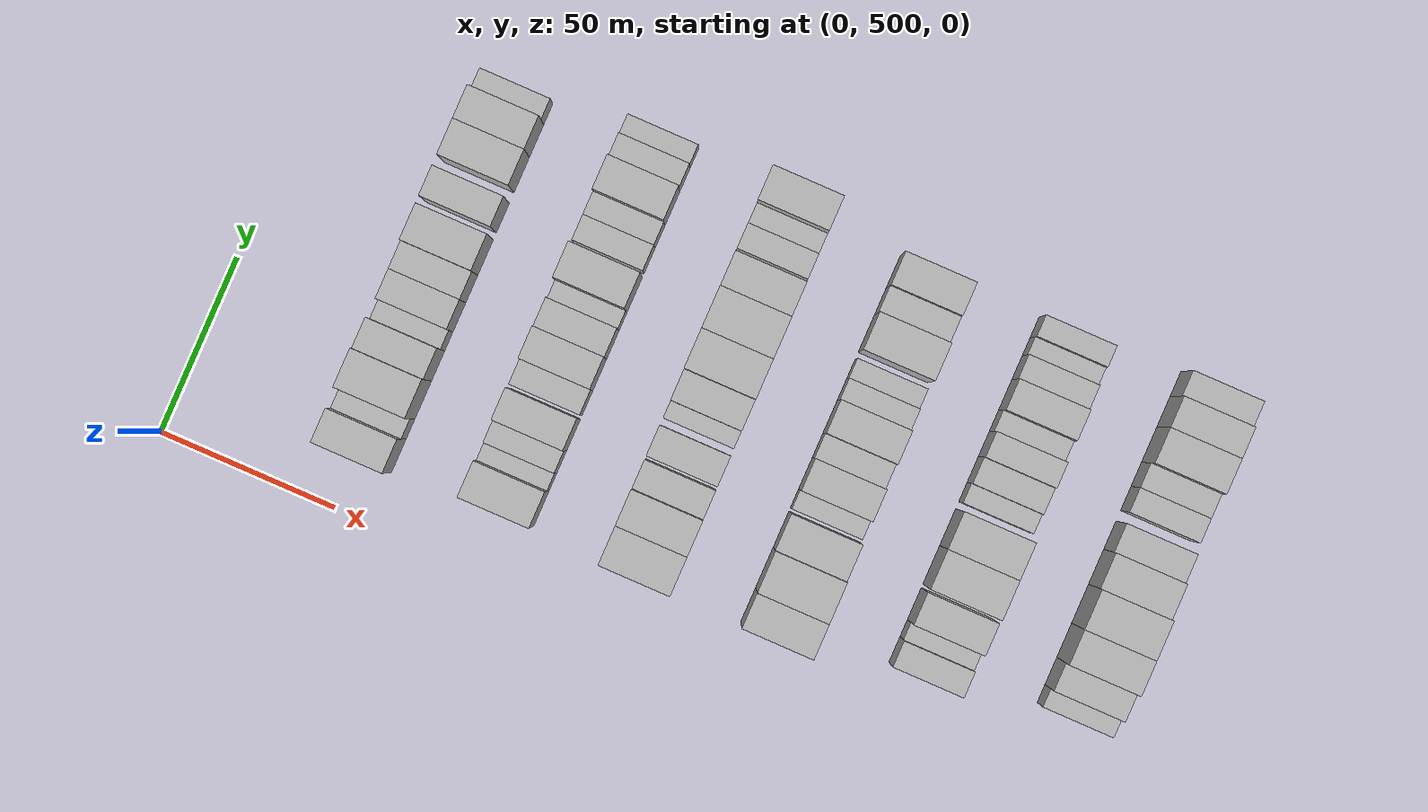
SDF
<sdf version="1.6">
 <world name="default">
  <model name="building_115">
   <static>1</static>
   <pose>50.0000 519.3262 0 0.000000 0.000000 0.000000</pose>
   <link name="link">
    <pose>0 0 10.50 0 0 0</pose>
    <collision name="collision"><geometry><box><size>20.0000 9.5626 21.0000</size></box></geometry></collision>
    <visual name="visual">
     <cast_shadows>0</cast_shadows>
     <geometry><box><size>20.0000 9.5626 21.0000</size></box></geometry>
     <material>
      <script>
       <uri>model://HANNAS_wall/materials/scripts</uri>
       <uri>model://HANNAS_wall/materials/textures</uri>
       <name>vrc/HANNAS_wall</name>
      </script>
     </material>
    </visual>
   </link>
  </model>
  <model name="building_116">
   <static>1</static>
   <pose>50.0000 526.9733 0 0.000000 0.000000 0.000000</pose>
   <link name="link">
    <pose>0 0 6.00 0 0 0</pose>
    <collision name="collision"><geometry><box><size>20.0000 5.7315 12.0000</size></box></geometry></collision>
    <visual name="visual">
     <cast_shadows>0</cast_shadows>
     <geometry><box><size>20.0000 5.7315 12.0000</size></box></geometry>
     <material>
      <script>
       <uri>model://HANNAS_wall/materials/scripts</uri>
       <uri>model://HANNAS_wall/materials/textures</uri>
       <name>vrc/HANNAS_wall</name>
      </script>
     </material>
    </visual>
   </link>
  </model>
  <model name="building_117">
   <static>1</static>
   <pose>50.0000 535.3043 0 0.000000 0.000000 0.000000</pose>
   <link name="link">
    <pose>0 0 12.00 0 0 0</pose>
    <collision name="collision"><geometry><box><size>20.0000 10.9306 24.0000</size></box></geometry></collision>
    <visual name="visual">
     <cast_shadows>0</cast_shadows>
     <geometry><box><size>20.0000 10.9306 24.0000</size></box></geometry>
     <material>
      <script>
       <uri>model://HANNAS_wall/materials/scripts</uri>
       <uri>model://HANNAS_wall/materials/textures</uri>
       <name>vrc/HANNAS_wall</name>
      </script>
     </material>
    </visual>
   </link>
  </model>
  <model name="building_118">
   <static>1</static>
   <pose>50.0000 545.1106 0 0.000000 0.000000 0.000000</pose>
   <link name="link">
    <pose>0 0 10.50 0 0 0</pose>
    <collision name="collision"><geometry><box><size>20.0000 8.6820 21.0000</size></box></geometry></collision>
    <visual name="visual">
     <cast_shadows>0</cast_shadows>
     <geometry><box><size>20.0000 8.6820 21.0000</size></box></geometry>
     <material>
      <script>
       <uri>model://HANNAS_wall/materials/scripts</uri>
       <uri>model://HANNAS_wall/materials/textures</uri>
       <name>vrc/HANNAS_wall</name>
      </script>
     </material>
    </visual>
   </link>
  </model>
  <model name="building_119">
   <static>1</static>
   <pose>50.0000 552.1535 0 0.000000 0.000000 0.000000</pose>
   <link name="link">
    <pose>0 0 6.00 0 0 0</pose>
    <collision name="collision"><geometry><box><size>20.0000 5.4037 12.0000</size></box></geometry></collision>
    <visual name="visual">
     <cast_shadows>0</cast_shadows>
     <geometry><box><size>20.0000 5.4037 12.0000</size></box></geometry>
     <material>
      <script>
       <uri>model://HANNAS_wall/materials/scripts</uri>
       <uri>model://HANNAS_wall/materials/textures</uri>
       <name>vrc/HANNAS_wall</name>
      </script>
     </material>
    </visual>
   </link>
  </model>
  <model name="building_120">
   <static>1</static>
   <pose>50.0000 559.0353 0 0.000000 0.000000 0.000000</pose>
   <link name="link">
    <pose>0 0 9.00 0 0 0</pose>
    <collision name="collision"><geometry><box><size>20.0000 8.3599 18.0000</size></box></geometry></collision>
    <visual name="visual">
     <cast_shadows>0</cast_shadows>
     <geometry><box><size>20.0000 8.3599 18.0000</size></box></geometry>
     <material>
      <script>
       <uri>model://HANNAS_wall/materials/scripts</uri>
       <uri>model://HANNAS_wall/materials/textures</uri>
       <name>vrc/HANNAS_wall</name>
      </script>
     </material>
    </visual>
   </link>
  </model>
  <model name="building_121">
   <static>1</static>
   <pose>50.0000 567.1533 0 0.000000 0.000000 0.000000</pose>
   <link name="link">
    <pose>0 0 9.00 0 0 0</pose>
    <collision name="collision"><geometry><box><size>20.0000 7.8762 18.0000</size></box></geometry></collision>
    <visual name="visual">
     <cast_shadows>0</cast_shadows>
     <geometry><box><size>20.0000 7.8762 18.0000</size></box></geometry>
     <material>
      <script>
       <uri>model://HANNAS_wall/materials/scripts</uri>
       <uri>model://HANNAS_wall/materials/textures</uri>
       <name>vrc/HANNAS_wall</name>
      </script>
     </material>
    </visual>
   </link>
  </model>
  <model name="building_122">
   <static>1</static>
   <pose>50.0000 576.2360 0 0.000000 0.000000 0.000000</pose>
   <link name="link">
    <pose>0 0 10.50 0 0 0</pose>
    <collision name="collision"><geometry><box><size>20.0000 10.2893 21.0000</size></box></geometry></collision>
    <visual name="visual">
     <cast_shadows>0</cast_shadows>
     <geometry><box><size>20.0000 10.2893 21.0000</size></box></geometry>
     <material>
      <script>
       <uri>model://HANNAS_wall/materials/scripts</uri>
       <uri>model://HANNAS_wall/materials/textures</uri>
       <name>vrc/HANNAS_wall</name>
      </script>
     </material>
    </visual>
   </link>
  </model>
  <model name="building_123">
   <static>1</static>
   <pose>50.0000 587.6496 0 0.000000 0.000000 0.000000</pose>
   <link name="link">
    <pose>0 0 10.50 0 0 0</pose>
    <collision name="collision"><geometry><box><size>20.0000 8.5380 21.0000</size></box></geometry></collision>
    <visual name="visual">
     <cast_shadows>0</cast_shadows>
     <geometry><box><size>20.0000 8.5380 21.0000</size></box></geometry>
     <material>
      <script>
       <uri>model://HANNAS_wall/materials/scripts</uri>
       <uri>model://HANNAS_wall/materials/textures</uri>
       <name>vrc/HANNAS_wall</name>
      </script>
     </material>
    </visual>
   </link>
  </model>
  <model name="building_124">
   <static>1</static>
   <pose>50.0000 599.9868 0 0.000000 0.000000 0.000000</pose>
   <link name="link">
    <pose>0 0 10.50 0 0 0</pose>
    <collision name="collision"><geometry><box><size>20.0000 10.1363 21.0000</size></box></geometry></collision>
    <visual name="visual">
     <cast_shadows>0</cast_shadows>
     <geometry><box><size>20.0000 10.1363 21.0000</size></box></geometry>
     <material>
      <script>
       <uri>model://HANNAS_wall/materials/scripts</uri>
       <uri>model://HANNAS_wall/materials/textures</uri>
       <name>vrc/HANNAS_wall</name>
      </script>
     </material>
    </visual>
   </link>
  </model>
  <model name="building_125">
   <static>1</static>
   <pose>50.0000 609.7550 0 0.000000 0.000000 0.000000</pose>
   <link name="link">
    <pose>0 0 10.50 0 0 0</pose>
    <collision name="collision"><geometry><box><size>20.0000 9.4000 21.0000</size></box></geometry></collision>
    <visual name="visual">
     <cast_shadows>0</cast_shadows>
     <geometry><box><size>20.0000 9.4000 21.0000</size></box></geometry>
     <material>
      <script>
       <uri>model://HANNAS_wall/materials/scripts</uri>
       <uri>model://HANNAS_wall/materials/textures</uri>
       <name>vrc/HANNAS_wall</name>
      </script>
     </material>
    </visual>
   </link>
  </model>
  <model name="building_126">
   <static>1</static>
   <pose>50.0000 617.4449 0 0.000000 0.000000 0.000000</pose>
   <link name="link">
    <pose>0 0 6.00 0 0 0</pose>
    <collision name="collision"><geometry><box><size>20.0000 5.9799 12.0000</size></box></geometry></collision>
    <visual name="visual">
     <cast_shadows>0</cast_shadows>
     <geometry><box><size>20.0000 5.9799 12.0000</size></box></geometry>
     <material>
      <script>
       <uri>model://HANNAS_wall/materials/scripts</uri>
       <uri>model://HANNAS_wall/materials/textures</uri>
       <name>vrc/HANNAS_wall</name>
      </script>
     </material>
    </visual>
   </link>
  </model>
  <model name="building_254">
   <static>1</static>
   <pose>90.0000 521.7883 0 0.000000 0.000000 0.000000</pose>
   <link name="link">
    <pose>0 0 10.50 0 0 0</pose>
    <collision name="collision"><geometry><box><size>20.0000 10.2414 21.0000</size></box></geometry></collision>
    <visual name="visual">
     <cast_shadows>0</cast_shadows>
     <geometry><box><size>20.0000 10.2414 21.0000</size></box></geometry>
     <material>
      <script>
       <uri>model://HANNAS_wall/materials/scripts</uri>
       <uri>model://HANNAS_wall/materials/textures</uri>
       <name>vrc/HANNAS_wall</name>
      </script>
     </material>
    </visual>
   </link>
  </model>
  <model name="building_255">
   <static>1</static>
   <pose>90.0000 529.4108 0 0.000000 0.000000 0.000000</pose>
   <link name="link">
    <pose>0 0 6.00 0 0 0</pose>
    <collision name="collision"><geometry><box><size>20.0000 5.0036 12.0000</size></box></geometry></collision>
    <visual name="visual">
     <cast_shadows>0</cast_shadows>
     <geometry><box><size>20.0000 5.0036 12.0000</size></box></geometry>
     <material>
      <script>
       <uri>model://HANNAS_wall/materials/scripts</uri>
       <uri>model://HANNAS_wall/materials/textures</uri>
       <name>vrc/HANNAS_wall</name>
      </script>
     </material>
    </visual>
   </link>
  </model>
  <model name="building_256">
   <static>1</static>
   <pose>90.0000 535.0986 0 0.000000 0.000000 0.000000</pose>
   <link name="link">
    <pose>0 0 7.50 0 0 0</pose>
    <collision name="collision"><geometry><box><size>20.0000 6.3720 15.0000</size></box></geometry></collision>
    <visual name="visual">
     <cast_shadows>0</cast_shadows>
     <geometry><box><size>20.0000 6.3720 15.0000</size></box></geometry>
     <material>
      <script>
       <uri>model://HANNAS_wall/materials/scripts</uri>
       <uri>model://HANNAS_wall/materials/textures</uri>
       <name>vrc/HANNAS_wall</name>
      </script>
     </material>
    </visual>
   </link>
  </model>
  <model name="building_257">
   <static>1</static>
   <pose>90.0000 542.8212 0 0.000000 0.000000 0.000000</pose>
   <link name="link">
    <pose>0 0 10.50 0 0 0</pose>
    <collision name="collision"><geometry><box><size>20.0000 9.0731 21.0000</size></box></geometry></collision>
    <visual name="visual">
     <cast_shadows>0</cast_shadows>
     <geometry><box><size>20.0000 9.0731 21.0000</size></box></geometry>
     <material>
      <script>
       <uri>model://HANNAS_wall/materials/scripts</uri>
       <uri>model://HANNAS_wall/materials/textures</uri>
       <name>vrc/HANNAS_wall</name>
      </script>
     </material>
    </visual>
   </link>
  </model>
  <model name="building_258">
   <static>1</static>
   <pose>90.0000 551.9077 0 0.000000 0.000000 0.000000</pose>
   <link name="link">
    <pose>0 0 7.50 0 0 0</pose>
    <collision name="collision"><geometry><box><size>20.0000 7.1000 15.0000</size></box></geometry></collision>
    <visual name="visual">
     <cast_shadows>0</cast_shadows>
     <geometry><box><size>20.0000 7.1000 15.0000</size></box></geometry>
     <material>
      <script>
       <uri>model://HANNAS_wall/materials/scripts</uri>
       <uri>model://HANNAS_wall/materials/textures</uri>
       <name>vrc/HANNAS_wall</name>
      </script>
     </material>
    </visual>
   </link>
  </model>
  <model name="building_259">
   <static>1</static>
   <pose>90.0000 559.9899 0 0.000000 0.000000 0.000000</pose>
   <link name="link">
    <pose>0 0 10.50 0 0 0</pose>
    <collision name="collision"><geometry><box><size>20.0000 9.0643 21.0000</size></box></geometry></collision>
    <visual name="visual">
     <cast_shadows>0</cast_shadows>
     <geometry><box><size>20.0000 9.0643 21.0000</size></box></geometry>
     <material>
      <script>
       <uri>model://HANNAS_wall/materials/scripts</uri>
       <uri>model://HANNAS_wall/materials/textures</uri>
       <name>vrc/HANNAS_wall</name>
      </script>
     </material>
    </visual>
   </link>
  </model>
  <model name="building_260">
   <static>1</static>
   <pose>90.0000 568.5949 0 0.000000 0.000000 0.000000</pose>
   <link name="link">
    <pose>0 0 9.00 0 0 0</pose>
    <collision name="collision"><geometry><box><size>20.0000 8.1458 18.0000</size></box></geometry></collision>
    <visual name="visual">
     <cast_shadows>0</cast_shadows>
     <geometry><box><size>20.0000 8.1458 18.0000</size></box></geometry>
     <material>
      <script>
       <uri>model://HANNAS_wall/materials/scripts</uri>
       <uri>model://HANNAS_wall/materials/textures</uri>
       <name>vrc/HANNAS_wall</name>
      </script>
     </material>
    </visual>
   </link>
  </model>
  <model name="building_261">
   <static>1</static>
   <pose>90.0000 575.2746 0 0.000000 0.000000 0.000000</pose>
   <link name="link">
    <pose>0 0 6.00 0 0 0</pose>
    <collision name="collision"><geometry><box><size>20.0000 5.2136 12.0000</size></box></geometry></collision>
    <visual name="visual">
     <cast_shadows>0</cast_shadows>
     <geometry><box><size>20.0000 5.2136 12.0000</size></box></geometry>
     <material>
      <script>
       <uri>model://HANNAS_wall/materials/scripts</uri>
       <uri>model://HANNAS_wall/materials/textures</uri>
       <name>vrc/HANNAS_wall</name>
      </script>
     </material>
    </visual>
   </link>
  </model>
  <model name="building_262">
   <static>1</static>
   <pose>90.0000 582.9206 0 0.000000 0.000000 0.000000</pose>
   <link name="link">
    <pose>0 0 12.00 0 0 0</pose>
    <collision name="collision"><geometry><box><size>20.0000 10.0784 24.0000</size></box></geometry></collision>
    <visual name="visual">
     <cast_shadows>0</cast_shadows>
     <geometry><box><size>20.0000 10.0784 24.0000</size></box></geometry>
     <material>
      <script>
       <uri>model://HANNAS_wall/materials/scripts</uri>
       <uri>model://HANNAS_wall/materials/textures</uri>
       <name>vrc/HANNAS_wall</name>
      </script>
     </material>
    </visual>
   </link>
  </model>
  <model name="building_263">
   <static>1</static>
   <pose>90.0000 592.5752 0 0.000000 0.000000 0.000000</pose>
   <link name="link">
    <pose>0 0 7.50 0 0 0</pose>
    <collision name="collision"><geometry><box><size>20.0000 7.2308 15.0000</size></box></geometry></collision>
    <visual name="visual">
     <cast_shadows>0</cast_shadows>
     <geometry><box><size>20.0000 7.2308 15.0000</size></box></geometry>
     <material>
      <script>
       <uri>model://HANNAS_wall/materials/scripts</uri>
       <uri>model://HANNAS_wall/materials/textures</uri>
       <name>vrc/HANNAS_wall</name>
      </script>
     </material>
    </visual>
   </link>
  </model>
  <model name="building_264">
   <static>1</static>
   <pose>90.0000 599.4547 0 0.000000 0.000000 0.000000</pose>
   <link name="link">
    <pose>0 0 7.50 0 0 0</pose>
    <collision name="collision"><geometry><box><size>20.0000 6.5281 15.0000</size></box></geometry></collision>
    <visual name="visual">
     <cast_shadows>0</cast_shadows>
     <geometry><box><size>20.0000 6.5281 15.0000</size></box></geometry>
     <material>
      <script>
       <uri>model://HANNAS_wall/materials/scripts</uri>
       <uri>model://HANNAS_wall/materials/textures</uri>
       <name>vrc/HANNAS_wall</name>
      </script>
     </material>
    </visual>
   </link>
  </model>
  <model name="building_265">
   <static>1</static>
   <pose>90.0000 607.5825 0 0.000000 0.000000 0.000000</pose>
   <link name="link">
    <pose>0 0 10.50 0 0 0</pose>
    <collision name="collision"><geometry><box><size>20.0000 9.7274 21.0000</size></box></geometry></collision>
    <visual name="visual">
     <cast_shadows>0</cast_shadows>
     <geometry><box><size>20.0000 9.7274 21.0000</size></box></geometry>
     <material>
      <script>
       <uri>model://HANNAS_wall/materials/scripts</uri>
       <uri>model://HANNAS_wall/materials/textures</uri>
       <name>vrc/HANNAS_wall</name>
      </script>
     </material>
    </visual>
   </link>
  </model>
  <model name="building_266">
   <static>1</static>
   <pose>90.0000 615.8366 0 0.000000 0.000000 0.000000</pose>
   <link name="link">
    <pose>0 0 7.50 0 0 0</pose>
    <collision name="collision"><geometry><box><size>20.0000 6.7807 15.0000</size></box></geometry></collision>
    <visual name="visual">
     <cast_shadows>0</cast_shadows>
     <geometry><box><size>20.0000 6.7807 15.0000</size></box></geometry>
     <material>
      <script>
       <uri>model://HANNAS_wall/materials/scripts</uri>
       <uri>model://HANNAS_wall/materials/textures</uri>
       <name>vrc/HANNAS_wall</name>
      </script>
     </material>
    </visual>
   </link>
  </model>
  <model name="building_267">
   <static>1</static>
   <pose>90.0000 622.0566 0 0.000000 0.000000 0.000000</pose>
   <link name="link">
    <pose>0 0 6.00 0 0 0</pose>
    <collision name="collision"><geometry><box><size>20.0000 5.6593 12.0000</size></box></geometry></collision>
    <visual name="visual">
     <cast_shadows>0</cast_shadows>
     <geometry><box><size>20.0000 5.6593 12.0000</size></box></geometry>
     <material>
      <script>
       <uri>model://HANNAS_wall/materials/scripts</uri>
       <uri>model://HANNAS_wall/materials/textures</uri>
       <name>vrc/HANNAS_wall</name>
      </script>
     </material>
    </visual>
   </link>
  </model>
  <model name="building_385">
   <static>1</static>
   <pose>130.0000 520.8320 0 0.000000 0.000000 0.000000</pose>
   <link name="link">
    <pose>0 0 12.00 0 0 0</pose>
    <collision name="collision"><geometry><box><size>20.0000 10.9348 24.0000</size></box></geometry></collision>
    <visual name="visual">
     <cast_shadows>0</cast_shadows>
     <geometry><box><size>20.0000 10.9348 24.0000</size></box></geometry>
     <material>
      <script>
       <uri>model://HANNAS_wall/materials/scripts</uri>
       <uri>model://HANNAS_wall/materials/textures</uri>
       <name>vrc/HANNAS_wall</name>
      </script>
     </material>
    </visual>
   </link>
  </model>
  <model name="building_386">
   <static>1</static>
   <pose>130.0000 531.3934 0 0.000000 0.000000 0.000000</pose>
   <link name="link">
    <pose>0 0 12.00 0 0 0</pose>
    <collision name="collision"><geometry><box><size>20.0000 10.1879 24.0000</size></box></geometry></collision>
    <visual name="visual">
     <cast_shadows>0</cast_shadows>
     <geometry><box><size>20.0000 10.1879 24.0000</size></box></geometry>
     <material>
      <script>
       <uri>model://HANNAS_wall/materials/scripts</uri>
       <uri>model://HANNAS_wall/materials/textures</uri>
       <name>vrc/HANNAS_wall</name>
      </script>
     </material>
    </visual>
   </link>
  </model>
  <model name="building_387">
   <static>1</static>
   <pose>130.0000 540.5738 0 0.000000 0.000000 0.000000</pose>
   <link name="link">
    <pose>0 0 9.00 0 0 0</pose>
    <collision name="collision"><geometry><box><size>20.0000 8.1730 18.0000</size></box></geometry></collision>
    <visual name="visual">
     <cast_shadows>0</cast_shadows>
     <geometry><box><size>20.0000 8.1730 18.0000</size></box></geometry>
     <material>
      <script>
       <uri>model://HANNAS_wall/materials/scripts</uri>
       <uri>model://HANNAS_wall/materials/textures</uri>
       <name>vrc/HANNAS_wall</name>
      </script>
     </material>
    </visual>
   </link>
  </model>
  <model name="building_388">
   <static>1</static>
   <pose>130.0000 549.9892 0 0.000000 0.000000 0.000000</pose>
   <link name="link">
    <pose>0 0 9.00 0 0 0</pose>
    <collision name="collision"><geometry><box><size>20.0000 8.6577 18.0000</size></box></geometry></collision>
    <visual name="visual">
     <cast_shadows>0</cast_shadows>
     <geometry><box><size>20.0000 8.6577 18.0000</size></box></geometry>
     <material>
      <script>
       <uri>model://HANNAS_wall/materials/scripts</uri>
       <uri>model://HANNAS_wall/materials/textures</uri>
       <name>vrc/HANNAS_wall</name>
      </script>
     </material>
    </visual>
   </link>
  </model>
  <model name="building_389">
   <static>1</static>
   <pose>130.0000 558.7937 0 0.000000 0.000000 0.000000</pose>
   <link name="link">
    <pose>0 0 6.00 0 0 0</pose>
    <collision name="collision"><geometry><box><size>20.0000 4.9512 12.0000</size></box></geometry></collision>
    <visual name="visual">
     <cast_shadows>0</cast_shadows>
     <geometry><box><size>20.0000 4.9512 12.0000</size></box></geometry>
     <material>
      <script>
       <uri>model://HANNAS_wall/materials/scripts</uri>
       <uri>model://HANNAS_wall/materials/textures</uri>
       <name>vrc/HANNAS_wall</name>
      </script>
     </material>
    </visual>
   </link>
  </model>
  <model name="building_390">
   <static>1</static>
   <pose>130.0000 565.6723 0 0.000000 0.000000 0.000000</pose>
   <link name="link">
    <pose>0 0 9.00 0 0 0</pose>
    <collision name="collision"><geometry><box><size>20.0000 8.8061 18.0000</size></box></geometry></collision>
    <visual name="visual">
     <cast_shadows>0</cast_shadows>
     <geometry><box><size>20.0000 8.8061 18.0000</size></box></geometry>
     <material>
      <script>
       <uri>model://HANNAS_wall/materials/scripts</uri>
       <uri>model://HANNAS_wall/materials/textures</uri>
       <name>vrc/HANNAS_wall</name>
      </script>
     </material>
    </visual>
   </link>
  </model>
  <model name="building_391">
   <static>1</static>
   <pose>130.0000 575.7002 0 0.000000 0.000000 0.000000</pose>
   <link name="link">
    <pose>0 0 12.00 0 0 0</pose>
    <collision name="collision"><geometry><box><size>20.0000 11.2496 24.0000</size></box></geometry></collision>
    <visual name="visual">
     <cast_shadows>0</cast_shadows>
     <geometry><box><size>20.0000 11.2496 24.0000</size></box></geometry>
     <material>
      <script>
       <uri>model://HANNAS_wall/materials/scripts</uri>
       <uri>model://HANNAS_wall/materials/textures</uri>
       <name>vrc/HANNAS_wall</name>
      </script>
     </material>
    </visual>
   </link>
  </model>
  <model name="building_392">
   <static>1</static>
   <pose>130.0000 587.2258 0 0.000000 0.000000 0.000000</pose>
   <link name="link">
    <pose>0 0 12.00 0 0 0</pose>
    <collision name="collision"><geometry><box><size>20.0000 11.8016 24.0000</size></box></geometry></collision>
    <visual name="visual">
     <cast_shadows>0</cast_shadows>
     <geometry><box><size>20.0000 11.8016 24.0000</size></box></geometry>
     <material>
      <script>
       <uri>model://HANNAS_wall/materials/scripts</uri>
       <uri>model://HANNAS_wall/materials/textures</uri>
       <name>vrc/HANNAS_wall</name>
      </script>
     </material>
    </visual>
   </link>
  </model>
  <model name="building_393">
   <static>1</static>
   <pose>130.0000 598.0948 0 0.000000 0.000000 0.000000</pose>
   <link name="link">
    <pose>0 0 10.50 0 0 0</pose>
    <collision name="collision"><geometry><box><size>20.0000 9.9365 21.0000</size></box></geometry></collision>
    <visual name="visual">
     <cast_shadows>0</cast_shadows>
     <geometry><box><size>20.0000 9.9365 21.0000</size></box></geometry>
     <material>
      <script>
       <uri>model://HANNAS_wall/materials/scripts</uri>
       <uri>model://HANNAS_wall/materials/textures</uri>
       <name>vrc/HANNAS_wall</name>
      </script>
     </material>
    </visual>
   </link>
  </model>
  <model name="building_394">
   <static>1</static>
   <pose>130.0000 607.6661 0 0.000000 0.000000 0.000000</pose>
   <link name="link">
    <pose>0 0 7.50 0 0 0</pose>
    <collision name="collision"><geometry><box><size>20.0000 7.2060 15.0000</size></box></geometry></collision>
    <visual name="visual">
     <cast_shadows>0</cast_shadows>
     <geometry><box><size>20.0000 7.2060 15.0000</size></box></geometry>
     <material>
      <script>
       <uri>model://HANNAS_wall/materials/scripts</uri>
       <uri>model://HANNAS_wall/materials/textures</uri>
       <name>vrc/HANNAS_wall</name>
      </script>
     </material>
    </visual>
   </link>
  </model>
  <model name="building_395">
   <static>1</static>
   <pose>130.0000 614.2426 0 0.000000 0.000000 0.000000</pose>
   <link name="link">
    <pose>0 0 6.00 0 0 0</pose>
    <collision name="collision"><geometry><box><size>20.0000 5.9469 12.0000</size></box></geometry></collision>
    <visual name="visual">
     <cast_shadows>0</cast_shadows>
     <geometry><box><size>20.0000 5.9469 12.0000</size></box></geometry>
     <material>
      <script>
       <uri>model://HANNAS_wall/materials/scripts</uri>
       <uri>model://HANNAS_wall/materials/textures</uri>
       <name>vrc/HANNAS_wall</name>
      </script>
     </material>
    </visual>
   </link>
  </model>
  <model name="building_396">
   <static>1</static>
   <pose>130.0000 622.1061 0 0.000000 0.000000 0.000000</pose>
   <link name="link">
    <pose>0 0 10.50 0 0 0</pose>
    <collision name="collision"><geometry><box><size>20.0000 9.7802 21.0000</size></box></geometry></collision>
    <visual name="visual">
     <cast_shadows>0</cast_shadows>
     <geometry><box><size>20.0000 9.7802 21.0000</size></box></geometry>
     <material>
      <script>
       <uri>model://HANNAS_wall/materials/scripts</uri>
       <uri>model://HANNAS_wall/materials/textures</uri>
       <name>vrc/HANNAS_wall</name>
      </script>
     </material>
    </visual>
   </link>
  </model>
  <model name="building_525">
   <static>1</static>
   <pose>170.0000 520.2026 0 0.000000 0.000000 0.000000</pose>
   <link name="link">
    <pose>0 0 12.00 0 0 0</pose>
    <collision name="collision"><geometry><box><size>20.0000 9.8419 24.0000</size></box></geometry></collision>
    <visual name="visual">
     <cast_shadows>0</cast_shadows>
     <geometry><box><size>20.0000 9.8419 24.0000</size></box></geometry>
     <material>
      <script>
       <uri>model://HANNAS_wall/materials/scripts</uri>
       <uri>model://HANNAS_wall/materials/textures</uri>
       <name>vrc/HANNAS_wall</name>
      </script>
     </material>
    </visual>
   </link>
  </model>
  <model name="building_526">
   <static>1</static>
   <pose>170.0000 530.9499 0 0.000000 0.000000 0.000000</pose>
   <link name="link">
    <pose>0 0 12.00 0 0 0</pose>
    <collision name="collision"><geometry><box><size>20.0000 11.6525 24.0000</size></box></geometry></collision>
    <visual name="visual">
     <cast_shadows>0</cast_shadows>
     <geometry><box><size>20.0000 11.6525 24.0000</size></box></geometry>
     <material>
      <script>
       <uri>model://HANNAS_wall/materials/scripts</uri>
       <uri>model://HANNAS_wall/materials/textures</uri>
       <name>vrc/HANNAS_wall</name>
      </script>
     </material>
    </visual>
   </link>
  </model>
  <model name="building_527">
   <static>1</static>
   <pose>170.0000 541.9347 0 0.000000 0.000000 0.000000</pose>
   <link name="link">
    <pose>0 0 10.50 0 0 0</pose>
    <collision name="collision"><geometry><box><size>20.0000 10.3172 21.0000</size></box></geometry></collision>
    <visual name="visual">
     <cast_shadows>0</cast_shadows>
     <geometry><box><size>20.0000 10.3172 21.0000</size></box></geometry>
     <material>
      <script>
       <uri>model://HANNAS_wall/materials/scripts</uri>
       <uri>model://HANNAS_wall/materials/textures</uri>
       <name>vrc/HANNAS_wall</name>
      </script>
     </material>
    </visual>
   </link>
  </model>
  <model name="building_528">
   <static>1</static>
   <pose>170.0000 550.7646 0 0.000000 0.000000 0.000000</pose>
   <link name="link">
    <pose>0 0 6.00 0 0 0</pose>
    <collision name="collision"><geometry><box><size>20.0000 5.3425 12.0000</size></box></geometry></collision>
    <visual name="visual">
     <cast_shadows>0</cast_shadows>
     <geometry><box><size>20.0000 5.3425 12.0000</size></box></geometry>
     <material>
      <script>
       <uri>model://HANNAS_wall/materials/scripts</uri>
       <uri>model://HANNAS_wall/materials/textures</uri>
       <name>vrc/HANNAS_wall</name>
      </script>
     </material>
    </visual>
   </link>
  </model>
  <model name="building_529">
   <static>1</static>
   <pose>170.0000 557.9519 0 0.000000 0.000000 0.000000</pose>
   <link name="link">
    <pose>0 0 10.50 0 0 0</pose>
    <collision name="collision"><geometry><box><size>20.0000 9.0321 21.0000</size></box></geometry></collision>
    <visual name="visual">
     <cast_shadows>0</cast_shadows>
     <geometry><box><size>20.0000 9.0321 21.0000</size></box></geometry>
     <material>
      <script>
       <uri>model://HANNAS_wall/materials/scripts</uri>
       <uri>model://HANNAS_wall/materials/textures</uri>
       <name>vrc/HANNAS_wall</name>
      </script>
     </material>
    </visual>
   </link>
  </model>
  <model name="building_530">
   <static>1</static>
   <pose>170.0000 565.9535 0 0.000000 0.000000 0.000000</pose>
   <link name="link">
    <pose>0 0 7.50 0 0 0</pose>
    <collision name="collision"><geometry><box><size>20.0000 6.9711 15.0000</size></box></geometry></collision>
    <visual name="visual">
     <cast_shadows>0</cast_shadows>
     <geometry><box><size>20.0000 6.9711 15.0000</size></box></geometry>
     <material>
      <script>
       <uri>model://HANNAS_wall/materials/scripts</uri>
       <uri>model://HANNAS_wall/materials/textures</uri>
       <name>vrc/HANNAS_wall</name>
      </script>
     </material>
    </visual>
   </link>
  </model>
  <model name="building_531">
   <static>1</static>
   <pose>170.0000 574.1608 0 0.000000 0.000000 0.000000</pose>
   <link name="link">
    <pose>0 0 10.50 0 0 0</pose>
    <collision name="collision"><geometry><box><size>20.0000 9.4436 21.0000</size></box></geometry></collision>
    <visual name="visual">
     <cast_shadows>0</cast_shadows>
     <geometry><box><size>20.0000 9.4436 21.0000</size></box></geometry>
     <material>
      <script>
       <uri>model://HANNAS_wall/materials/scripts</uri>
       <uri>model://HANNAS_wall/materials/textures</uri>
       <name>vrc/HANNAS_wall</name>
      </script>
     </material>
    </visual>
   </link>
  </model>
  <model name="building_532">
   <static>1</static>
   <pose>170.0000 581.9419 0 0.000000 0.000000 0.000000</pose>
   <link name="link">
    <pose>0 0 7.50 0 0 0</pose>
    <collision name="collision"><geometry><box><size>20.0000 6.1187 15.0000</size></box></geometry></collision>
    <visual name="visual">
     <cast_shadows>0</cast_shadows>
     <geometry><box><size>20.0000 6.1187 15.0000</size></box></geometry>
     <material>
      <script>
       <uri>model://HANNAS_wall/materials/scripts</uri>
       <uri>model://HANNAS_wall/materials/textures</uri>
       <name>vrc/HANNAS_wall</name>
      </script>
     </material>
    </visual>
   </link>
  </model>
  <model name="building_533">
   <static>1</static>
   <pose>170.0000 587.8477 0 0.000000 0.000000 0.000000</pose>
   <link name="link">
    <pose>0 0 6.00 0 0 0</pose>
    <collision name="collision"><geometry><box><size>20.0000 5.6928 12.0000</size></box></geometry></collision>
    <visual name="visual">
     <cast_shadows>0</cast_shadows>
     <geometry><box><size>20.0000 5.6928 12.0000</size></box></geometry>
     <material>
      <script>
       <uri>model://HANNAS_wall/materials/scripts</uri>
       <uri>model://HANNAS_wall/materials/textures</uri>
       <name>vrc/HANNAS_wall</name>
      </script>
     </material>
    </visual>
   </link>
  </model>
  <model name="building_534">
   <static>1</static>
   <pose>170.0000 597.9901 0 0.000000 0.000000 0.000000</pose>
   <link name="link">
    <pose>0 0 12.00 0 0 0</pose>
    <collision name="collision"><geometry><box><size>20.0000 10.5920 24.0000</size></box></geometry></collision>
    <visual name="visual">
     <cast_shadows>0</cast_shadows>
     <geometry><box><size>20.0000 10.5920 24.0000</size></box></geometry>
     <material>
      <script>
       <uri>model://HANNAS_wall/materials/scripts</uri>
       <uri>model://HANNAS_wall/materials/textures</uri>
       <name>vrc/HANNAS_wall</name>
      </script>
     </material>
    </visual>
   </link>
  </model>
  <model name="building_535">
   <static>1</static>
   <pose>170.0000 607.0911 0 0.000000 0.000000 0.000000</pose>
   <link name="link">
    <pose>0 0 9.00 0 0 0</pose>
    <collision name="collision"><geometry><box><size>20.0000 7.6100 18.0000</size></box></geometry></collision>
    <visual name="visual">
     <cast_shadows>0</cast_shadows>
     <geometry><box><size>20.0000 7.6100 18.0000</size></box></geometry>
     <material>
      <script>
       <uri>model://HANNAS_wall/materials/scripts</uri>
       <uri>model://HANNAS_wall/materials/textures</uri>
       <name>vrc/HANNAS_wall</name>
      </script>
     </material>
    </visual>
   </link>
  </model>
  <model name="building_536">
   <static>1</static>
   <pose>170.0000 615.6043 0 0.000000 0.000000 0.000000</pose>
   <link name="link">
    <pose>0 0 10.50 0 0 0</pose>
    <collision name="collision"><geometry><box><size>20.0000 9.4164 21.0000</size></box></geometry></collision>
    <visual name="visual">
     <cast_shadows>0</cast_shadows>
     <geometry><box><size>20.0000 9.4164 21.0000</size></box></geometry>
     <material>
      <script>
       <uri>model://HANNAS_wall/materials/scripts</uri>
       <uri>model://HANNAS_wall/materials/textures</uri>
       <name>vrc/HANNAS_wall</name>
      </script>
     </material>
    </visual>
   </link>
  </model>
  <model name="building_659">
   <static>1</static>
   <pose>210.0000 524.9307 0 0.000000 0.000000 0.000000</pose>
   <link name="link">
    <pose>0 0 7.50 0 0 0</pose>
    <collision name="collision"><geometry><box><size>20.0000 7.3629 15.0000</size></box></geometry></collision>
    <visual name="visual">
     <cast_shadows>0</cast_shadows>
     <geometry><box><size>20.0000 7.3629 15.0000</size></box></geometry>
     <material>
      <script>
       <uri>model://HANNAS_wall/materials/scripts</uri>
       <uri>model://HANNAS_wall/materials/textures</uri>
       <name>vrc/HANNAS_wall</name>
      </script>
     </material>
    </visual>
   </link>
  </model>
  <model name="building_660">
   <static>1</static>
   <pose>210.0000 531.0713 0 0.000000 0.000000 0.000000</pose>
   <link name="link">
    <pose>0 0 6.00 0 0 0</pose>
    <collision name="collision"><geometry><box><size>20.0000 4.9182 12.0000</size></box></geometry></collision>
    <visual name="visual">
     <cast_shadows>0</cast_shadows>
     <geometry><box><size>20.0000 4.9182 12.0000</size></box></geometry>
     <material>
      <script>
       <uri>model://HANNAS_wall/materials/scripts</uri>
       <uri>model://HANNAS_wall/materials/textures</uri>
       <name>vrc/HANNAS_wall</name>
      </script>
     </material>
    </visual>
   </link>
  </model>
  <model name="building_661">
   <static>1</static>
   <pose>210.0000 538.0762 0 0.000000 0.000000 0.000000</pose>
   <link name="link">
    <pose>0 0 10.50 0 0 0</pose>
    <collision name="collision"><geometry><box><size>20.0000 9.0915 21.0000</size></box></geometry></collision>
    <visual name="visual">
     <cast_shadows>0</cast_shadows>
     <geometry><box><size>20.0000 9.0915 21.0000</size></box></geometry>
     <material>
      <script>
       <uri>model://HANNAS_wall/materials/scripts</uri>
       <uri>model://HANNAS_wall/materials/textures</uri>
       <name>vrc/HANNAS_wall</name>
      </script>
     </material>
    </visual>
   </link>
  </model>
  <model name="building_662">
   <static>1</static>
   <pose>210.0000 549.1879 0 0.000000 0.000000 0.000000</pose>
   <link name="link">
    <pose>0 0 12.00 0 0 0</pose>
    <collision name="collision"><geometry><box><size>20.0000 11.1319 24.0000</size></box></geometry></collision>
    <visual name="visual">
     <cast_shadows>0</cast_shadows>
     <geometry><box><size>20.0000 11.1319 24.0000</size></box></geometry>
     <material>
      <script>
       <uri>model://HANNAS_wall/materials/scripts</uri>
       <uri>model://HANNAS_wall/materials/textures</uri>
       <name>vrc/HANNAS_wall</name>
      </script>
     </material>
    </visual>
   </link>
  </model>
  <model name="building_663">
   <static>1</static>
   <pose>210.0000 559.9959 0 0.000000 0.000000 0.000000</pose>
   <link name="link">
    <pose>0 0 12.00 0 0 0</pose>
    <collision name="collision"><geometry><box><size>20.0000 10.4843 24.0000</size></box></geometry></collision>
    <visual name="visual">
     <cast_shadows>0</cast_shadows>
     <geometry><box><size>20.0000 10.4843 24.0000</size></box></geometry>
     <material>
      <script>
       <uri>model://HANNAS_wall/materials/scripts</uri>
       <uri>model://HANNAS_wall/materials/textures</uri>
       <name>vrc/HANNAS_wall</name>
      </script>
     </material>
    </visual>
   </link>
  </model>
  <model name="building_664">
   <static>1</static>
   <pose>210.0000 570.0030 0 0.000000 0.000000 0.000000</pose>
   <link name="link">
    <pose>0 0 6.00 0 0 0</pose>
    <collision name="collision"><geometry><box><size>20.0000 5.5299 12.0000</size></box></geometry></collision>
    <visual name="visual">
     <cast_shadows>0</cast_shadows>
     <geometry><box><size>20.0000 5.5299 12.0000</size></box></geometry>
     <material>
      <script>
       <uri>model://HANNAS_wall/materials/scripts</uri>
       <uri>model://HANNAS_wall/materials/textures</uri>
       <name>vrc/HANNAS_wall</name>
      </script>
     </material>
    </visual>
   </link>
  </model>
  <model name="building_665">
   <static>1</static>
   <pose>210.0000 576.4912 0 0.000000 0.000000 0.000000</pose>
   <link name="link">
    <pose>0 0 7.50 0 0 0</pose>
    <collision name="collision"><geometry><box><size>20.0000 7.4464 15.0000</size></box></geometry></collision>
    <visual name="visual">
     <cast_shadows>0</cast_shadows>
     <geometry><box><size>20.0000 7.4464 15.0000</size></box></geometry>
     <material>
      <script>
       <uri>model://HANNAS_wall/materials/scripts</uri>
       <uri>model://HANNAS_wall/materials/textures</uri>
       <name>vrc/HANNAS_wall</name>
      </script>
     </material>
    </visual>
   </link>
  </model>
  <model name="building_666">
   <static>1</static>
   <pose>210.0000 583.8614 0 0.000000 0.000000 0.000000</pose>
   <link name="link">
    <pose>0 0 9.00 0 0 0</pose>
    <collision name="collision"><geometry><box><size>20.0000 7.2939 18.0000</size></box></geometry></collision>
    <visual name="visual">
     <cast_shadows>0</cast_shadows>
     <geometry><box><size>20.0000 7.2939 18.0000</size></box></geometry>
     <material>
      <script>
       <uri>model://HANNAS_wall/materials/scripts</uri>
       <uri>model://HANNAS_wall/materials/textures</uri>
       <name>vrc/HANNAS_wall</name>
      </script>
     </material>
    </visual>
   </link>
  </model>
  <model name="building_667">
   <static>1</static>
   <pose>210.0000 590.5042 0 0.000000 0.000000 0.000000</pose>
   <link name="link">
    <pose>0 0 6.00 0 0 0</pose>
    <collision name="collision"><geometry><box><size>20.0000 5.9917 12.0000</size></box></geometry></collision>
    <visual name="visual">
     <cast_shadows>0</cast_shadows>
     <geometry><box><size>20.0000 5.9917 12.0000</size></box></geometry>
     <material>
      <script>
       <uri>model://HANNAS_wall/materials/scripts</uri>
       <uri>model://HANNAS_wall/materials/textures</uri>
       <name>vrc/HANNAS_wall</name>
      </script>
     </material>
    </visual>
   </link>
  </model>
  <model name="building_668">
   <static>1</static>
   <pose>210.0000 597.8740 0 0.000000 0.000000 0.000000</pose>
   <link name="link">
    <pose>0 0 9.00 0 0 0</pose>
    <collision name="collision"><geometry><box><size>20.0000 8.7479 18.0000</size></box></geometry></collision>
    <visual name="visual">
     <cast_shadows>0</cast_shadows>
     <geometry><box><size>20.0000 8.7479 18.0000</size></box></geometry>
     <material>
      <script>
       <uri>model://HANNAS_wall/materials/scripts</uri>
       <uri>model://HANNAS_wall/materials/textures</uri>
       <name>vrc/HANNAS_wall</name>
      </script>
     </material>
    </visual>
   </link>
  </model>
  <model name="building_669">
   <static>1</static>
   <pose>210.0000 605.7176 0 0.000000 0.000000 0.000000</pose>
   <link name="link">
    <pose>0 0 7.50 0 0 0</pose>
    <collision name="collision"><geometry><box><size>20.0000 6.9391 15.0000</size></box></geometry></collision>
    <visual name="visual">
     <cast_shadows>0</cast_shadows>
     <geometry><box><size>20.0000 6.9391 15.0000</size></box></geometry>
     <material>
      <script>
       <uri>model://HANNAS_wall/materials/scripts</uri>
       <uri>model://HANNAS_wall/materials/textures</uri>
       <name>vrc/HANNAS_wall</name>
      </script>
     </material>
    </visual>
   </link>
  </model>
  <model name="building_670">
   <static>1</static>
   <pose>210.0000 611.7103 0 0.000000 0.000000 0.000000</pose>
   <link name="link">
    <pose>0 0 6.00 0 0 0</pose>
    <collision name="collision"><geometry><box><size>20.0000 5.0464 12.0000</size></box></geometry></collision>
    <visual name="visual">
     <cast_shadows>0</cast_shadows>
     <geometry><box><size>20.0000 5.0464 12.0000</size></box></geometry>
     <material>
      <script>
       <uri>model://HANNAS_wall/materials/scripts</uri>
       <uri>model://HANNAS_wall/materials/textures</uri>
       <name>vrc/HANNAS_wall</name>
      </script>
     </material>
    </visual>
   </link>
  </model>
  <model name="building_671">
   <static>1</static>
   <pose>210.0000 617.2675 0 0.000000 0.000000 0.000000</pose>
   <link name="link">
    <pose>0 0 7.50 0 0 0</pose>
    <collision name="collision"><geometry><box><size>20.0000 6.0680 15.0000</size></box></geometry></collision>
    <visual name="visual">
     <cast_shadows>0</cast_shadows>
     <geometry><box><size>20.0000 6.0680 15.0000</size></box></geometry>
     <material>
      <script>
       <uri>model://HANNAS_wall/materials/scripts</uri>
       <uri>model://HANNAS_wall/materials/textures</uri>
       <name>vrc/HANNAS_wall</name>
      </script>
     </material>
    </visual>
   </link>
  </model>
  <model name="building_801">
   <static>1</static>
   <pose>250.0000 529.7389 0 0.000000 0.000000 0.000000</pose>
   <link name="link">
    <pose>0 0 6.00 0 0 0</pose>
    <collision name="collision"><geometry><box><size>20.0000 5.1430 12.0000</size></box></geometry></collision>
    <visual name="visual">
     <cast_shadows>0</cast_shadows>
     <geometry><box><size>20.0000 5.1430 12.0000</size></box></geometry>
     <material>
      <script>
       <uri>model://HANNAS_wall/materials/scripts</uri>
       <uri>model://HANNAS_wall/materials/textures</uri>
       <name>vrc/HANNAS_wall</name>
      </script>
     </material>
    </visual>
   </link>
  </model>
  <model name="building_802">
   <static>1</static>
   <pose>250.0000 536.2127 0 0.000000 0.000000 0.000000</pose>
   <link name="link">
    <pose>0 0 9.00 0 0 0</pose>
    <collision name="collision"><geometry><box><size>20.0000 7.8046 18.0000</size></box></geometry></collision>
    <visual name="visual">
     <cast_shadows>0</cast_shadows>
     <geometry><box><size>20.0000 7.8046 18.0000</size></box></geometry>
     <material>
      <script>
       <uri>model://HANNAS_wall/materials/scripts</uri>
       <uri>model://HANNAS_wall/materials/textures</uri>
       <name>vrc/HANNAS_wall</name>
      </script>
     </material>
    </visual>
   </link>
  </model>
  <model name="building_803">
   <static>1</static>
   <pose>250.0000 545.0295 0 0.000000 0.000000 0.000000</pose>
   <link name="link">
    <pose>0 0 12.00 0 0 0</pose>
    <collision name="collision"><geometry><box><size>20.0000 9.8289 24.0000</size></box></geometry></collision>
    <visual name="visual">
     <cast_shadows>0</cast_shadows>
     <geometry><box><size>20.0000 9.8289 24.0000</size></box></geometry>
     <material>
      <script>
       <uri>model://HANNAS_wall/materials/scripts</uri>
       <uri>model://HANNAS_wall/materials/textures</uri>
       <name>vrc/HANNAS_wall</name>
      </script>
     </material>
    </visual>
   </link>
  </model>
  <model name="building_804">
   <static>1</static>
   <pose>250.0000 555.5109 0 0.000000 0.000000 0.000000</pose>
   <link name="link">
    <pose>0 0 12.00 0 0 0</pose>
    <collision name="collision"><geometry><box><size>20.0000 11.1339 24.0000</size></box></geometry></collision>
    <visual name="visual">
     <cast_shadows>0</cast_shadows>
     <geometry><box><size>20.0000 11.1339 24.0000</size></box></geometry>
     <material>
      <script>
       <uri>model://HANNAS_wall/materials/scripts</uri>
       <uri>model://HANNAS_wall/materials/textures</uri>
       <name>vrc/HANNAS_wall</name>
      </script>
     </material>
    </visual>
   </link>
  </model>
  <model name="building_805">
   <static>1</static>
   <pose>250.0000 566.0932 0 0.000000 0.000000 0.000000</pose>
   <link name="link">
    <pose>0 0 10.50 0 0 0</pose>
    <collision name="collision"><geometry><box><size>20.0000 10.0308 21.0000</size></box></geometry></collision>
    <visual name="visual">
     <cast_shadows>0</cast_shadows>
     <geometry><box><size>20.0000 10.0308 21.0000</size></box></geometry>
     <material>
      <script>
       <uri>model://HANNAS_wall/materials/scripts</uri>
       <uri>model://HANNAS_wall/materials/textures</uri>
       <name>vrc/HANNAS_wall</name>
      </script>
     </material>
    </visual>
   </link>
  </model>
  <model name="building_806">
   <static>1</static>
   <pose>250.0000 575.1625 0 0.000000 0.000000 0.000000</pose>
   <link name="link">
    <pose>0 0 9.00 0 0 0</pose>
    <collision name="collision"><geometry><box><size>20.0000 8.1078 18.0000</size></box></geometry></collision>
    <visual name="visual">
     <cast_shadows>0</cast_shadows>
     <geometry><box><size>20.0000 8.1078 18.0000</size></box></geometry>
     <material>
      <script>
       <uri>model://HANNAS_wall/materials/scripts</uri>
       <uri>model://HANNAS_wall/materials/textures</uri>
       <name>vrc/HANNAS_wall</name>
      </script>
     </material>
    </visual>
   </link>
  </model>
  <model name="building_807">
   <static>1</static>
   <pose>250.0000 585.6821 0 0.000000 0.000000 0.000000</pose>
   <link name="link">
    <pose>0 0 7.50 0 0 0</pose>
    <collision name="collision"><geometry><box><size>20.0000 6.9315 15.0000</size></box></geometry></collision>
    <visual name="visual">
     <cast_shadows>0</cast_shadows>
     <geometry><box><size>20.0000 6.9315 15.0000</size></box></geometry>
     <material>
      <script>
       <uri>model://HANNAS_wall/materials/scripts</uri>
       <uri>model://HANNAS_wall/materials/textures</uri>
       <name>vrc/HANNAS_wall</name>
      </script>
     </material>
    </visual>
   </link>
  </model>
  <model name="building_808">
   <static>1</static>
   <pose>250.0000 592.6190 0 0.000000 0.000000 0.000000</pose>
   <link name="link">
    <pose>0 0 7.50 0 0 0</pose>
    <collision name="collision"><geometry><box><size>20.0000 6.9423 15.0000</size></box></geometry></collision>
    <visual name="visual">
     <cast_shadows>0</cast_shadows>
     <geometry><box><size>20.0000 6.9423 15.0000</size></box></geometry>
     <material>
      <script>
       <uri>model://HANNAS_wall/materials/scripts</uri>
       <uri>model://HANNAS_wall/materials/textures</uri>
       <name>vrc/HANNAS_wall</name>
      </script>
     </material>
    </visual>
   </link>
  </model>
  <model name="building_809">
   <static>1</static>
   <pose>250.0000 601.0913 0 0.000000 0.000000 0.000000</pose>
   <link name="link">
    <pose>0 0 10.50 0 0 0</pose>
    <collision name="collision"><geometry><box><size>20.0000 10.0022 21.0000</size></box></geometry></collision>
    <visual name="visual">
     <cast_shadows>0</cast_shadows>
     <geometry><box><size>20.0000 10.0022 21.0000</size></box></geometry>
     <material>
      <script>
       <uri>model://HANNAS_wall/materials/scripts</uri>
       <uri>model://HANNAS_wall/materials/textures</uri>
       <name>vrc/HANNAS_wall</name>
      </script>
     </material>
    </visual>
   </link>
  </model>
  <model name="building_810">
   <static>1</static>
   <pose>250.0000 610.4687 0 0.000000 0.000000 0.000000</pose>
   <link name="link">
    <pose>0 0 10.50 0 0 0</pose>
    <collision name="collision"><geometry><box><size>20.0000 8.7525 21.0000</size></box></geometry></collision>
    <visual name="visual">
     <cast_shadows>0</cast_shadows>
     <geometry><box><size>20.0000 8.7525 21.0000</size></box></geometry>
     <material>
      <script>
       <uri>model://HANNAS_wall/materials/scripts</uri>
       <uri>model://HANNAS_wall/materials/textures</uri>
       <name>vrc/HANNAS_wall</name>
      </script>
     </material>
    </visual>
   </link>
  </model>
  <model name="building_811">
   <static>1</static>
   <pose>250.0000 618.4635 0 0.000000 0.000000 0.000000</pose>
   <link name="link">
    <pose>0 0 9.00 0 0 0</pose>
    <collision name="collision"><geometry><box><size>20.0000 7.2373 18.0000</size></box></geometry></collision>
    <visual name="visual">
     <cast_shadows>0</cast_shadows>
     <geometry><box><size>20.0000 7.2373 18.0000</size></box></geometry>
     <material>
      <script>
       <uri>model://HANNAS_wall/materials/scripts</uri>
       <uri>model://HANNAS_wall/materials/textures</uri>
       <name>vrc/HANNAS_wall</name>
      </script>
     </material>
    </visual>
   </link>
  </model>
 </world>
</sdf>
